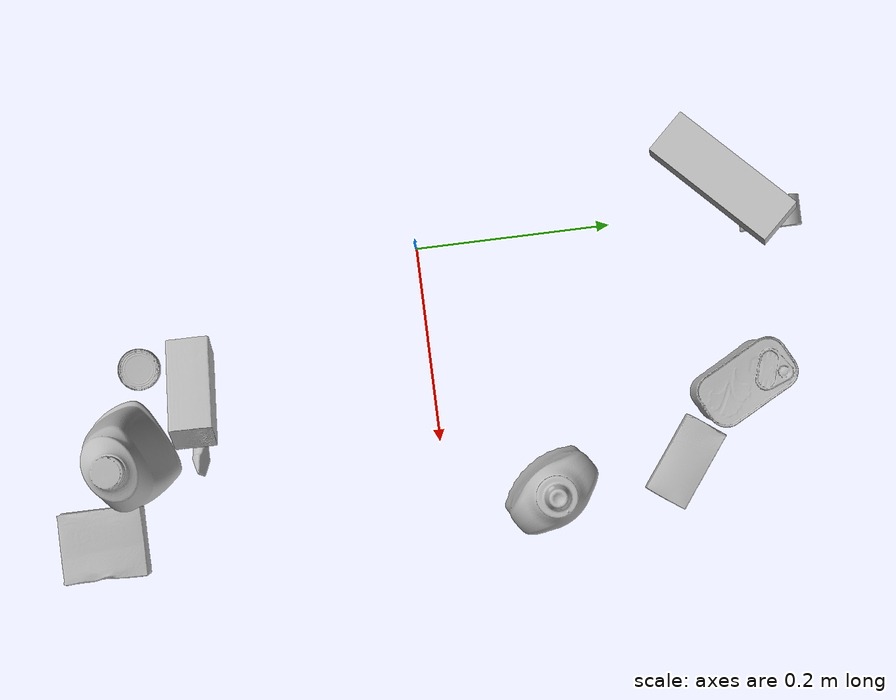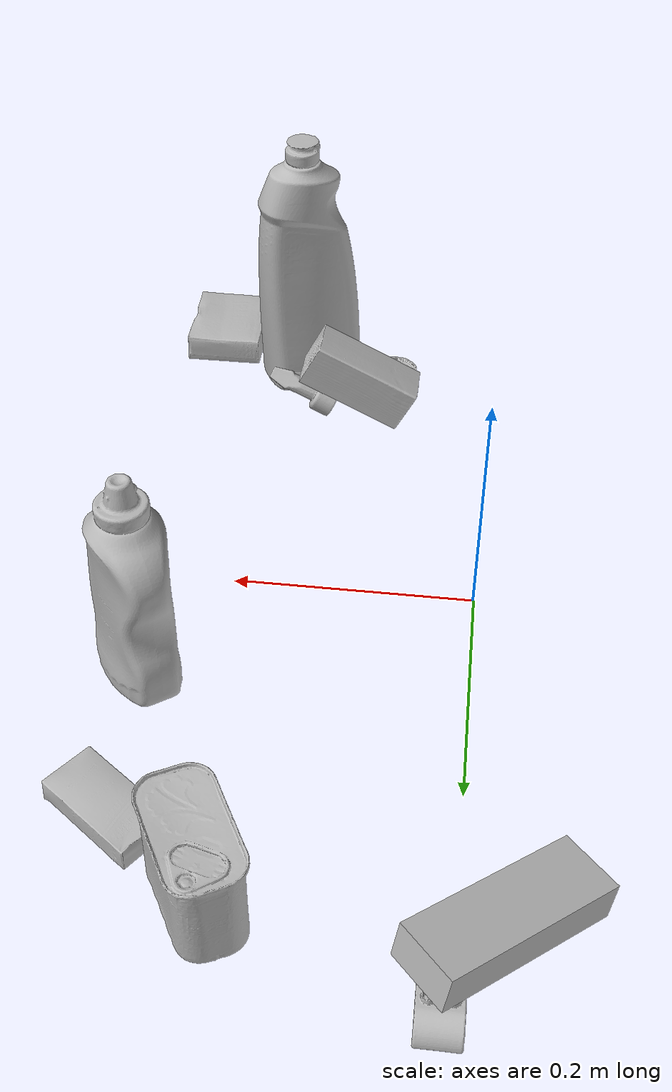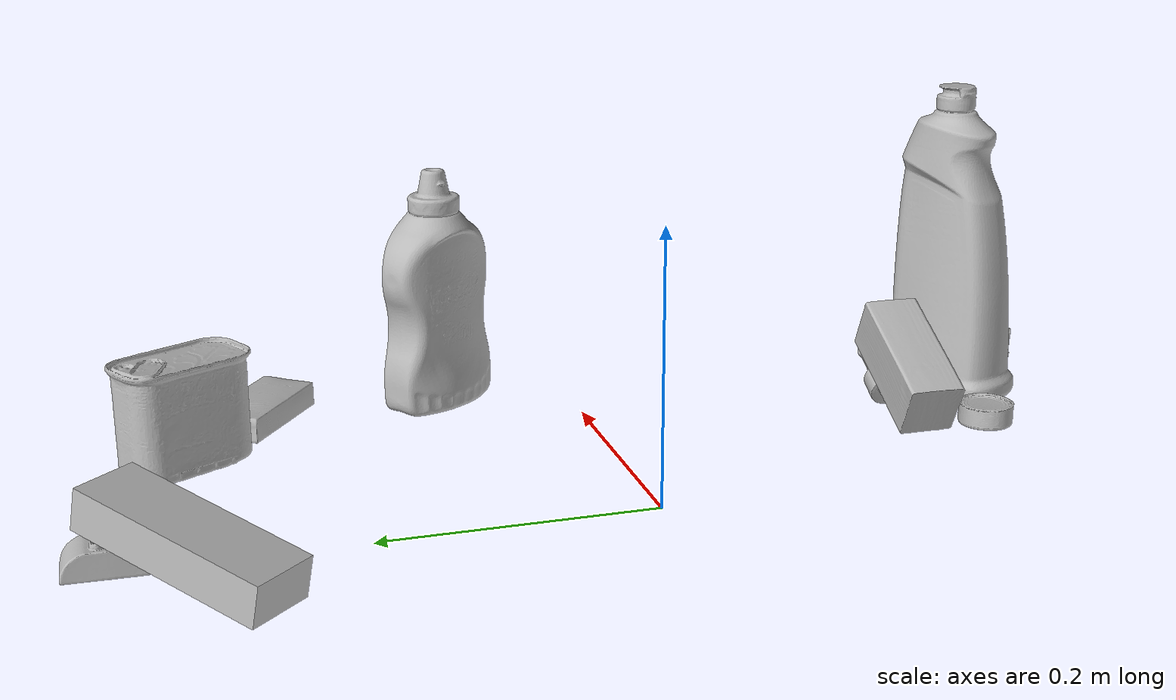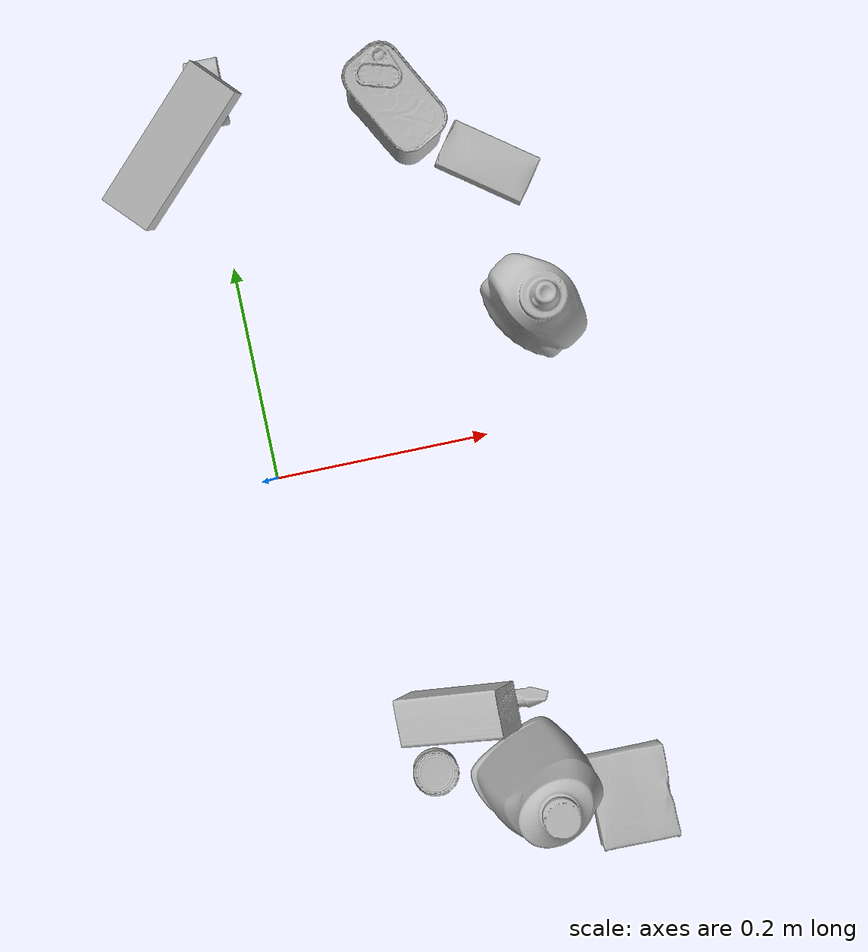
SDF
<sdf version="1.4">
  <world name="default">
    <light name="light1" type="point">
      <pose>0 0 1 0 0 0</pose>
      <diffuse>3 3 3 1</diffuse>
      <specular>3 3 3 1</specular>
    </light>
    <light name="light2" type="point">
      <pose>0 0.5 2 0 0 0</pose>
      <diffuse>1 1 1 1</diffuse>
      <specular>1 1 1 1</specular>
    </light>
    <light name="light3" type="point">
      <pose>0 0.5 2 0 0 0</pose>
      <diffuse>3 3 3 1</diffuse>
      <specular>3 3 3 1</specular>
    </light>
    <scene>
      <ambient>0.7 0.7 0.7</ambient>
    </scene>
    <model name="bottle1">
      <link name="link_bottle1">
        <collision name="default">
          <geometry>
            <mesh>
              <uri>model://bleach_cleanser/collision_meshes/collision.obj</uri>
              <scale>1.0 1.0 1.0</scale>
            </mesh>
          </geometry>
          <surface>
            <friction>
              <ode>
                <mu>0.5</mu>
                <mu2>0.5</mu2>
              </ode>
            </friction>
          <contact>
        <ode>
            <max_vel>0</max_vel>
            <min_depth>0.0001</min_depth>
            <kp>1e8</kp>
        </ode>
    </contact></surface>
        </collision>
        <visual name="default">
          <geometry>
            <mesh>
              <uri>model://bleach_cleanser/visual_meshes/visual.dae</uri>
              <scale>1.0 1.0 1.0</scale>
            </mesh>
          </geometry>
        </visual>
        <inertial>
          <mass>0.5324875712394714</mass>
          <pose>0.00012193183647468686 0.0037838825955986977 -0.024421609938144684 -0.07381669869164166 0.0004201168944593395 -0.0068750469260774934</pose>
          <inertia>
            <ixx>0.0025916947</ixx>
            <iyy>0.0024150796</iyy>
            <izz>0.00044311245</izz>
            <ixy>0</ixy>
            <ixz>0</ixz>
            <iyz>0</iyz>
          </inertia>
        </inertial>
      </link>
      <pose>0.17158183455467224 -0.3091926872730255 0.12580648064613342 -0.00010754584723989954 -0.0005691026807453233 -1.0721048450829205</pose>
    </model>
    <model name="bottle2">
      <link name="link_bottle2">
        <collision name="default">
          <geometry>
            <mesh>
              <uri>model://mustard_bottle/collision_meshes/collision.obj</uri>
              <scale>1.0 1.0 1.0</scale>
            </mesh>
          </geometry>
          <surface>
            <friction>
              <ode>
                <mu>0.5</mu>
                <mu2>0.5</mu2>
              </ode>
            </friction>
          <contact>
        <ode>
            <max_vel>0</max_vel>
            <min_depth>0.0001</min_depth>
            <kp>1e8</kp>
        </ode>
    </contact></surface>
        </collision>
        <visual name="default">
          <geometry>
            <mesh>
              <uri>model://mustard_bottle/visual_meshes/visual.dae</uri>
              <scale>1.0 1.0 1.0</scale>
            </mesh>
          </geometry>
        </visual>
        <inertial>
          <mass>0.7762566804885864</mass>
          <pose>0.0005032453336752951 -0.0001564739941386506 -0.01747579127550125 0.0004182320844136383 0.0009465775961192733 0.024853776391442105</pose>
          <inertia>
            <ixx>0.0021555587</ixx>
            <iyy>0.0018913207</iyy>
            <izz>0.00056809856</izz>
            <ixy>0</ixy>
            <ixz>0</ixz>
            <iyz>0</iyz>
          </inertia>
        </inertial>
      </link>
      <pose>0.25893113017082214 0.10433460026979446 0.09615200757980347 1.5191176920561513e-05 1.6845012051513937e-05 -2.5588831070516687</pose>
    </model>
    <model name="toy1">
      <link name="link_toy1">
        <collision name="default">
          <geometry>
            <mesh>
              <uri>model://e_toy_airplane/collision_meshes/collision.obj</uri>
              <scale>1.0 1.0 1.0</scale>
            </mesh>
          </geometry>
          <surface>
            <friction>
              <ode>
                <mu>0.5</mu>
                <mu2>0.5</mu2>
              </ode>
            </friction>
          <contact>
        <ode>
            <max_vel>0</max_vel>
            <min_depth>0.0001</min_depth>
            <kp>1e8</kp>
        </ode>
    </contact></surface>
        </collision>
        <visual name="default">
          <geometry>
            <mesh>
              <uri>model://e_toy_airplane/visual_meshes/visual.dae</uri>
              <scale>1.0 1.0 1.0</scale>
            </mesh>
          </geometry>
        </visual>
        <inertial>
          <mass>0.01693064346909523</mass>
          <pose>0.00011740485206246376 -2.2482869098894298e-05 -0.011187203228473663 0.005518486263483037 0.009228306153066855 0.15041416456770357</pose>
          <inertia>
            <ixx>5.1674256e-06</ixx>
            <iyy>5.1145657e-06</iyy>
            <izz>1.5530146e-06</izz>
            <ixy>0</ixy>
            <ixz>0</ixz>
            <iyz>0</iyz>
          </inertia>
        </inertial>
      </link>
      <pose>0.17251615226268768 -0.24183456599712372 0.028053531423211098 -1.0757670420067338 0.4190966706718656 -1.3880658249776847</pose>
    </model>
    <model name="toy2">
      <link name="link_toy2">
        <collision name="default">
          <geometry>
            <mesh>
              <uri>model://a_lego_duplo/collision_meshes/collision.obj</uri>
              <scale>1.0 1.0 1.0</scale>
            </mesh>
          </geometry>
          <surface>
            <friction>
              <ode>
                <mu>0.5</mu>
                <mu2>0.5</mu2>
              </ode>
            </friction>
          <contact>
        <ode>
            <max_vel>0</max_vel>
            <min_depth>0.0001</min_depth>
            <kp>1e8</kp>
        </ode>
    </contact></surface>
        </collision>
        <visual name="default">
          <geometry>
            <mesh>
              <uri>model://a_lego_duplo/visual_meshes/visual.dae</uri>
              <scale>1.0 1.0 1.0</scale>
            </mesh>
          </geometry>
        </visual>
        <inertial>
          <mass>0.026311658322811127</mass>
          <pose>-0.000113377594971098 0.00018517566786613315 0.0003692609607242048 -0.014117022075399962 -0.00012566465015892618 6.142856652531641e-05</pose>
          <inertia>
            <ixx>3.3733654e-06</ixx>
            <iyy>7.557078e-06</iyy>
            <izz>9.361117e-06</izz>
            <ixy>0</ixy>
            <ixz>0</ixz>
            <iyz>0</iyz>
          </inertia>
        </inertial>
      </link>
      <pose>0.008378309197723866 0.36504435539245605 0.012191851623356342 -0.004787471887678887 -0.009327559612002387 1.5728181328177422</pose>
    </model>
    <model name="can1">
      <link name="link_can1">
        <collision name="default">
          <geometry>
            <mesh>
              <uri>model://tuna_fish_can/collision_meshes/collision.obj</uri>
              <scale>0.5 0.5 0.5</scale>
            </mesh>
          </geometry>
          <surface>
            <friction>
              <ode>
                <mu>0.5</mu>
                <mu2>0.5</mu2>
              </ode>
            </friction>
          <contact>
        <ode>
            <max_vel>0</max_vel>
            <min_depth>0.0001</min_depth>
            <kp>1e8</kp>
        </ode>
    </contact></surface>
        </collision>
        <visual name="default">
          <geometry>
            <mesh>
              <uri>model://tuna_fish_can/visual_meshes/visual.dae</uri>
              <scale>0.5 0.5 0.5</scale>
            </mesh>
          </geometry>
        </visual>
        <inertial>
          <mass>0.025987863540649414</mass>
          <pose>-2.0361601855256595e-05 -7.256298886204604e-06 -0.0005269025568850338 -0.0017944787689317097 0.0001716279666079131 0.24054509142506303</pose>
          <inertia>
            <ixx>3.5135977e-06</ixx>
            <iyy>3.4989534e-06</iyy>
            <izz>6.0122675e-06</izz>
            <ixy>0</ixy>
            <ixz>0</ixz>
            <iyz>0</iyz>
          </inertia>
        </inertial>
      </link>
      <pose>0.08835959434509277 -0.2972373068332672 0.008519998751580715 -1.559879667231354e-08 -1.1805777157282003e-08 0.07710549818213693</pose>
    </model>
    <model name="can2">
      <link name="link_can2">
        <collision name="default">
          <geometry>
            <mesh>
              <uri>model://potted_meat_can/collision_meshes/collision.obj</uri>
              <scale>1.0 1.0 1.0</scale>
            </mesh>
          </geometry>
          <surface>
            <friction>
              <ode>
                <mu>0.5</mu>
                <mu2>0.5</mu2>
              </ode>
            </friction>
          <contact>
        <ode>
            <max_vel>0</max_vel>
            <min_depth>0.0001</min_depth>
            <kp>1e8</kp>
        </ode>
    </contact></surface>
        </collision>
        <visual name="default">
          <geometry>
            <mesh>
              <uri>model://potted_meat_can/visual_meshes/visual.dae</uri>
              <scale>1.0 1.0 1.0</scale>
            </mesh>
          </geometry>
        </visual>
        <inertial>
          <mass>0.2732236087322235</mass>
          <pose>0.00022888141393195838 -5.989111741655506e-05 -0.0006367441383190453 -0.028093326615163196 -0.007232604646238421 0.015406262399643026</pose>
          <inertia>
            <ixx>0.0003514736</ixx>
            <iyy>0.00021354685</iyy>
            <izz>0.00025563012</izz>
            <ixy>0</ixy>
            <ixz>0</ixz>
            <iyz>0</iyz>
          </inertia>
        </inertial>
      </link>
      <pose>0.1753549426794052 0.3093036115169525 0.04212801903486252 -2.876027694874526e-08 -4.956420010033895e-07 -2.655867132764322</pose>
    </model>
    <model name="box1">
      <link name="link_box1">
        <collision name="default">
          <geometry>
            <mesh>
              <uri>model://gelatin_box/collision_meshes/collision.obj</uri>
              <scale>1.0 1.0 1.0</scale>
            </mesh>
          </geometry>
          <surface>
            <friction>
              <ode>
                <mu>0.5</mu>
                <mu2>0.5</mu2>
              </ode>
            </friction>
          <contact>
        <ode>
            <max_vel>0</max_vel>
            <min_depth>0.0001</min_depth>
            <kp>1e8</kp>
        </ode>
    </contact></surface>
        </collision>
        <visual name="default">
          <geometry>
            <mesh>
              <uri>model://gelatin_box/visual_meshes/visual.dae</uri>
              <scale>1.0 1.0 1.0</scale>
            </mesh>
          </geometry>
        </visual>
        <inertial>
          <mass>0.14974145591259003</mass>
          <pose>0.0004319618456065655 0.00011156871914863586 -0.0003640321083366871 -0.0010503719798216618 -0.004755819622564704 0.01644055760929568</pose>
          <inertia>
            <ixx>0.00010570526</ixx>
            <iyy>7.550471e-05</iyy>
            <izz>0.00016090693</izz>
            <ixy>0</ixy>
            <ixz>0</ixz>
            <iyz>0</iyz>
          </inertia>
        </inertial>
      </link>
      <pose>0.26145216822624207 -0.35450851917266846 0.015168312937021255 0.00559740726733967 -0.007304482393617981 -0.012236439645184</pose>
    </model>
    <model name="box2">
      <link name="link_box2">
        <collision name="default">
          <geometry>
            <mesh>
              <uri>model://sugar_box/collision_meshes/collision.obj</uri>
              <scale>0.5 0.5 0.5</scale>
            </mesh>
          </geometry>
          <surface>
            <friction>
              <ode>
                <mu>0.5</mu>
                <mu2>0.5</mu2>
              </ode>
            </friction>
          <contact>
        <ode>
            <max_vel>0</max_vel>
            <min_depth>0.0001</min_depth>
            <kp>1e8</kp>
        </ode>
    </contact></surface>
        </collision>
        <visual name="default">
          <geometry>
            <mesh>
              <uri>model://sugar_box/visual_meshes/visual.dae</uri>
              <scale>0.5 0.5 0.5</scale>
            </mesh>
          </geometry>
        </visual>
        <inertial>
          <mass>0.07143953442573547</mass>
          <pose>0.0005171863595023751 1.924554817378521e-05 -0.00018182402709499002 -0.0004046263588767038 0.0010506634057764815 0.0026153785560837986</pose>
          <inertia>
            <ixx>1.4880804e-05</ixx>
            <iyy>4.8097805e-05</iyy>
            <izz>5.757883e-05</izz>
            <ixy>0</ixy>
            <ixz>0</ixz>
            <iyz>0</iyz>
          </inertia>
        </inertial>
      </link>
      <pose>0.2509416937828064 0.24740394949913025 0.011399303562939167 0.0007754938848718872 -0.023433259816537506 -0.6403019531792881</pose>
    </model>
    <model name="box3">
      <link name="link_box3">
        <collision name="default">
          <geometry>
            <mesh>
              <uri>model://jenga/collision_meshes/collision.obj</uri>
              <scale>1.0 1.0 1.0</scale>
            </mesh>
          </geometry>
          <surface>
            <friction>
              <ode>
                <mu>0.5</mu>
                <mu2>0.5</mu2>
              </ode>
            </friction>
          <contact>
        <ode>
            <max_vel>0</max_vel>
            <min_depth>0.0001</min_depth>
            <kp>1e8</kp>
        </ode>
    </contact></surface>
        </collision>
        <visual name="default">
          <geometry>
            <mesh>
              <uri>model://jenga/visual_meshes/visual.dae</uri>
              <scale>1.0 1.0 1.0</scale>
            </mesh>
          </geometry>
        </visual>
        <inertial>
          <mass>0.2564851939678192</mass>
          <pose>-2.502855807051674e-07 -0.00010250010382151231 -4.0923401684267446e-05 0.0 -7.342154049184251e-07 0.0</pose>
          <inertia>
            <ixx>7.097568e-05</ixx>
            <iyy>0.00048092927</iyy>
            <izz>0.0005134329</izz>
            <ixy>0</ixy>
            <ixz>0</ixz>
            <iyz>0</iyz>
          </inertia>
        </inertial>
      </link>
      <pose>-0.03104504756629467 0.31772199273109436 0.02984737977385521 -3.2506507419658255e-06 -0.20703027532135945 0.7526131737626677</pose>
    </model>
    <model name="box4">
      <link name="link_box4">
        <collision name="default">
          <geometry>
            <mesh>
              <uri>model://wood_block/collision_meshes/collision.obj</uri>
              <scale>0.5 0.5 0.5</scale>
            </mesh>
          </geometry>
          <surface>
            <friction>
              <ode>
                <mu>0.5</mu>
                <mu2>0.5</mu2>
              </ode>
            </friction>
          <contact>
        <ode>
            <max_vel>0</max_vel>
            <min_depth>0.0001</min_depth>
            <kp>1e8</kp>
        </ode>
    </contact></surface>
        </collision>
        <visual name="default">
          <geometry>
            <mesh>
              <uri>model://wood_block/visual_meshes/visual.dae</uri>
              <scale>0.5 0.5 0.5</scale>
            </mesh>
          </geometry>
        </visual>
        <inertial>
          <mass>0.2543213665485382</mass>
          <pose>-2.906657982748584e-06 -0.000285404734313488 0.00013204291462898254 -0.05220794665887619 -0.0051926956484831775 -0.006861378561045436</pose>
          <inertia>
            <ixx>8.508011e-05</ixx>
            <iyy>0.00026876814</iyy>
            <izz>0.00026776275</izz>
            <ixy>0</ixy>
            <ixz>0</ixz>
            <iyz>0</iyz>
          </inertia>
        </inertial>
      </link>
      <pose>0.11817461997270584 -0.24289876222610474 0.0435217060148716 2.9415923912994795e-05 -0.46219457522444496 -0.020222818593300676</pose>
    </model>
  <physics type="ode">
      <max_contacts>50</max_contacts>
      <ode>
        <solver>
          <type>quick</type>
          <iters>75</iters>
        </solver>
        <constraints>
          <contact_max_correcting_vel>0</contact_max_correcting_vel>
          <contact_surface_layer>0</contact_surface_layer>
        </constraints>
      </ode>
    </physics></world>
</sdf>
